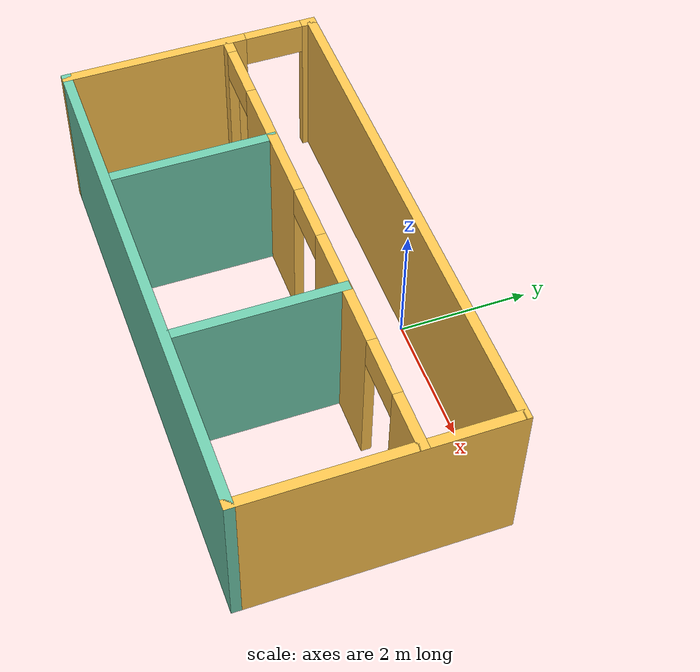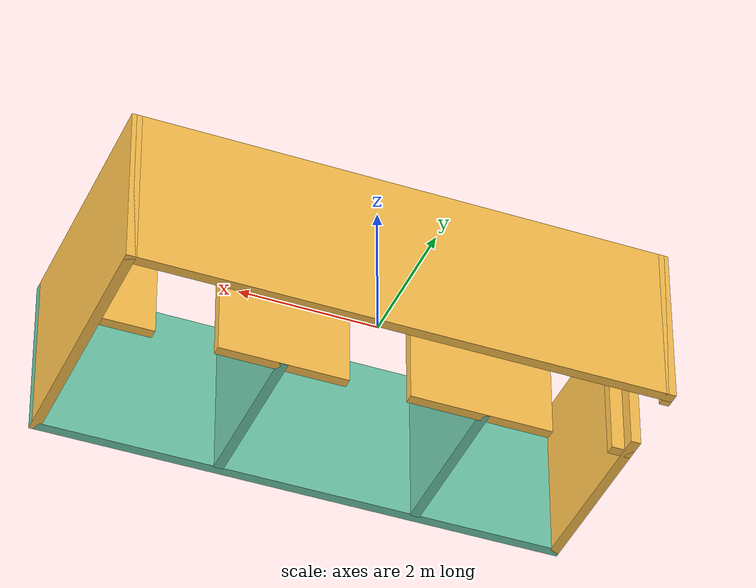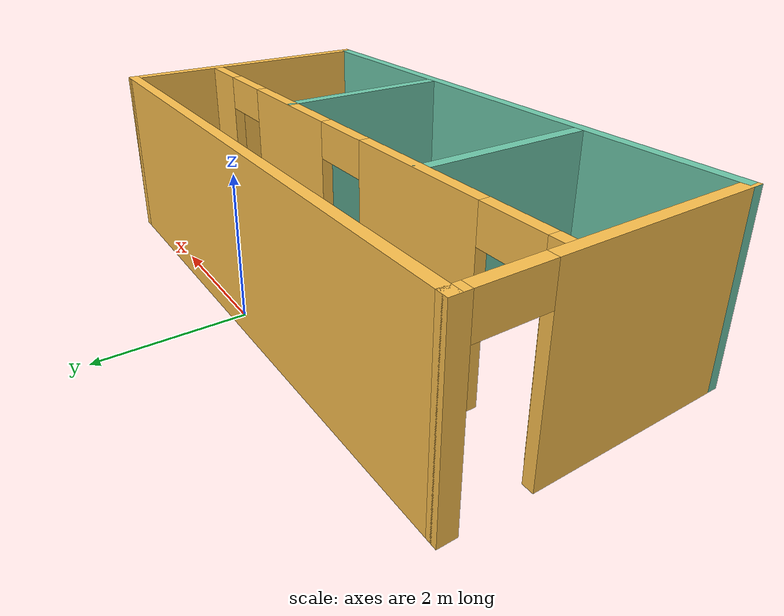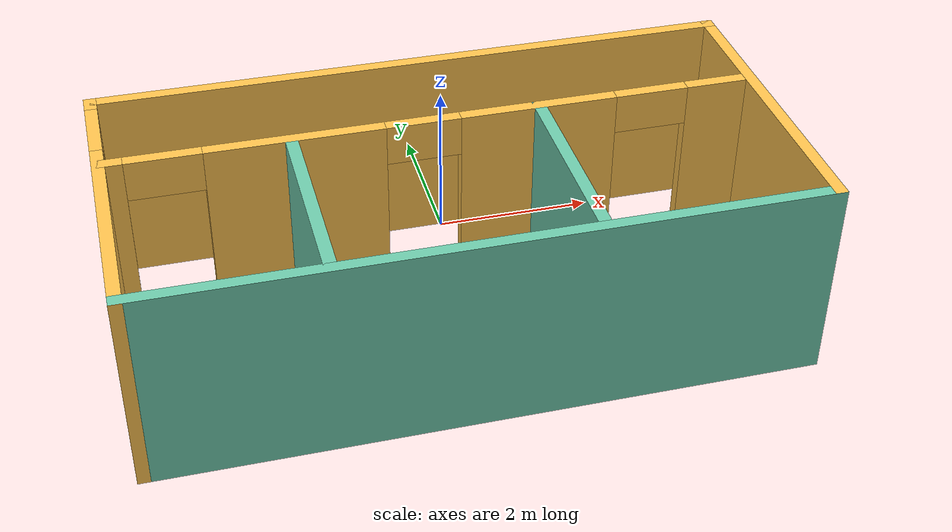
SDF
<?xml version='1.0'?>
<sdf version='1.6'>
  <model name='building'>
    <pose frame=''>-0.355 -1.835 0 0 -0 0</pose>
    <link name='Wall_12'>
      <collision name='Wall_12_Collision'>
        <geometry>
          <box>
            <size>8 0.15 2.5</size>
          </box>
        </geometry>
        <pose frame=''>0 0 1.25 0 -0 0</pose>
      </collision>
      <visual name='Wall_12_Visual'>
        <pose frame=''>0 0 1.25 0 -0 0</pose>
        <geometry>
          <box>
            <size>8 0.15 2.5</size>
          </box>
        </geometry>
        <material>
          <script>
            <uri>file://media/materials/scripts/gazebo.material</uri>
            <name>Gazebo/Grey</name>
          </script>
          <ambient>1 0.764706 0.305882 1</ambient>
        </material>
        <meta>
          <layer>0</layer>
        </meta>
      </visual>
      <pose frame=''>0 1.925 0 0 -0 0</pose>
    </link>
    <link name='Wall_13'>
      <collision name='Wall_13_Collision'>
        <geometry>
          <box>
            <size>4 0.15 2.5</size>
          </box>
        </geometry>
        <pose frame=''>0 0 1.25 0 -0 0</pose>
      </collision>
      <visual name='Wall_13_Visual'>
        <pose frame=''>0 0 1.25 0 -0 0</pose>
        <geometry>
          <box>
            <size>4 0.15 2.5</size>
          </box>
        </geometry>
        <material>
          <script>
            <uri>file://media/materials/scripts/gazebo.material</uri>
            <name>Gazebo/Grey</name>
          </script>
          <ambient>1 0.764706 0.305882 1</ambient>
        </material>
        <meta>
          <layer>0</layer>
        </meta>
      </visual>
      <pose frame=''>3.925 0 0 0 0 -1.5708</pose>
    </link>
    <link name='Wall_14'>
      <collision name='Wall_14_Collision'>
        <geometry>
          <box>
            <size>8 0.15 2.5</size>
          </box>
        </geometry>
        <pose frame=''>0 0 1.25 0 -0 0</pose>
      </collision>
      <visual name='Wall_14_Visual'>
        <pose frame=''>0 0 1.25 0 -0 0</pose>
        <geometry>
          <box>
            <size>8 0.15 2.5</size>
          </box>
        </geometry>
        <material>
          <script>
            <uri>file://media/materials/scripts/gazebo.material</uri>
            <name>Gazebo/Grey</name>
          </script>
          <ambient>0.435294 0.796078 0.67451 1</ambient>
        </material>
        <meta>
          <layer>0</layer>
        </meta>
      </visual>
      <pose frame=''>0 -1.925 0 0 -0 3.14159</pose>
    </link>
    <link name='Wall_15'>
      <pose frame=''>-3.925 0 0 0 -0 1.5708</pose>
      <visual name='Wall_15_Visual_0'>
        <pose frame=''>-0.5725 0 1.25 0 -0 0</pose>
        <geometry>
          <box>
            <size>2.855 0.15 2.5</size>
          </box>
        </geometry>
        <material>
          <script>
            <uri>file://media/materials/scripts/gazebo.material</uri>
            <name>Gazebo/Grey</name>
          </script>
          <ambient>1 0.764706 0.305882 1</ambient>
        </material>
        <meta>
          <layer>0</layer>
        </meta>
      </visual>
      <collision name='Wall_15_Collision_0'>
        <geometry>
          <box>
            <size>2.855 0.15 2.5</size>
          </box>
        </geometry>
        <pose frame=''>-0.5725 0 1.25 0 -0 0</pose>
      </collision>
      <visual name='Wall_15_Visual_1'>
        <pose frame=''>1.8775 0 1.25 0 -0 0</pose>
        <geometry>
          <box>
            <size>0.245 0.15 2.5</size>
          </box>
        </geometry>
        <material>
          <script>
            <uri>file://media/materials/scripts/gazebo.material</uri>
            <name>Gazebo/Grey</name>
          </script>
          <ambient>1 0.764706 0.305882 1</ambient>
        </material>
        <meta>
          <layer>0</layer>
        </meta>
      </visual>
      <collision name='Wall_15_Collision_1'>
        <geometry>
          <box>
            <size>0.245 0.15 2.5</size>
          </box>
        </geometry>
        <pose frame=''>1.8775 0 1.25 0 -0 0</pose>
      </collision>
      <visual name='Wall_15_Visual_2'>
        <pose frame=''>1.305 0 2.25 0 -0 0</pose>
        <geometry>
          <box>
            <size>0.9 0.15 0.5</size>
          </box>
        </geometry>
        <material>
          <script>
            <uri>file://media/materials/scripts/gazebo.material</uri>
            <name>Gazebo/Grey</name>
          </script>
          <ambient>1 0.764706 0.305882 1</ambient>
        </material>
        <meta>
          <layer>0</layer>
        </meta>
      </visual>
      <collision name='Wall_15_Collision_2'>
        <geometry>
          <box>
            <size>0.9 0.15 0.5</size>
          </box>
        </geometry>
        <pose frame=''>1.305 0 2.25 0 -0 0</pose>
      </collision>
    </link>
    <link name='Wall_19'>
      <pose frame=''>0 0.565 0 0 -0 0</pose>
      <visual name='Wall_19_Visual_0'>
        <pose frame=''>-3.8275 0 1.25 0 -0 0</pose>
        <geometry>
          <box>
            <size>0.345 0.15 2.5</size>
          </box>
        </geometry>
        <material>
          <script>
            <uri>file://media/materials/scripts/gazebo.material</uri>
            <name>Gazebo/Grey</name>
          </script>
          <ambient>1 0.764706 0.305882 1</ambient>
        </material>
        <meta>
          <layer>0</layer>
        </meta>
      </visual>
      <collision name='Wall_19_Collision_0'>
        <geometry>
          <box>
            <size>0.345 0.15 2.5</size>
          </box>
        </geometry>
        <pose frame=''>-3.8275 0 1.25 0 -0 0</pose>
      </collision>
      <visual name='Wall_19_Visual_1'>
        <pose frame=''>-1.69 0 1.25 0 -0 0</pose>
        <geometry>
          <box>
            <size>2.13 0.15 2.5</size>
          </box>
        </geometry>
        <material>
          <script>
            <uri>file://media/materials/scripts/gazebo.material</uri>
            <name>Gazebo/Grey</name>
          </script>
          <ambient>1 0.764706 0.305882 1</ambient>
        </material>
        <meta>
          <layer>0</layer>
        </meta>
      </visual>
      <collision name='Wall_19_Collision_1'>
        <geometry>
          <box>
            <size>2.13 0.15 2.5</size>
          </box>
        </geometry>
        <pose frame=''>-1.69 0 1.25 0 -0 0</pose>
      </collision>
      <visual name='Wall_19_Visual_2'>
        <pose frame=''>1.235 0 1.25 0 -0 0</pose>
        <geometry>
          <box>
            <size>1.92 0.15 2.5</size>
          </box>
        </geometry>
        <material>
          <script>
            <uri>file://media/materials/scripts/gazebo.material</uri>
            <name>Gazebo/Grey</name>
          </script>
          <ambient>1 0.764706 0.305882 1</ambient>
        </material>
        <meta>
          <layer>0</layer>
        </meta>
      </visual>
      <collision name='Wall_19_Collision_2'>
        <geometry>
          <box>
            <size>1.92 0.15 2.5</size>
          </box>
        </geometry>
        <pose frame=''>1.235 0 1.25 0 -0 0</pose>
      </collision>
      <visual name='Wall_19_Visual_3'>
        <pose frame=''>3.5475 0 1.25 0 -0 0</pose>
        <geometry>
          <box>
            <size>0.905 0.15 2.5</size>
          </box>
        </geometry>
        <material>
          <script>
            <uri>file://media/materials/scripts/gazebo.material</uri>
            <name>Gazebo/Grey</name>
          </script>
          <ambient>1 0.764706 0.305882 1</ambient>
        </material>
        <meta>
          <layer>0</layer>
        </meta>
      </visual>
      <collision name='Wall_19_Collision_3'>
        <geometry>
          <box>
            <size>0.905 0.15 2.5</size>
          </box>
        </geometry>
        <pose frame=''>3.5475 0 1.25 0 -0 0</pose>
      </collision>
      <visual name='Wall_19_Visual_4'>
        <pose frame=''>-3.205 0 2.25 0 -0 0</pose>
        <geometry>
          <box>
            <size>0.9 0.15 0.5</size>
          </box>
        </geometry>
        <material>
          <script>
            <uri>file://media/materials/scripts/gazebo.material</uri>
            <name>Gazebo/Grey</name>
          </script>
          <ambient>1 0.764706 0.305882 1</ambient>
        </material>
        <meta>
          <layer>0</layer>
        </meta>
      </visual>
      <collision name='Wall_19_Collision_4'>
        <geometry>
          <box>
            <size>0.9 0.15 0.5</size>
          </box>
        </geometry>
        <pose frame=''>-3.205 0 2.25 0 -0 0</pose>
      </collision>
      <visual name='Wall_19_Visual_5'>
        <pose frame=''>-0.175 0 2.25 0 -0 0</pose>
        <geometry>
          <box>
            <size>0.9 0.15 0.5</size>
          </box>
        </geometry>
        <material>
          <script>
            <uri>file://media/materials/scripts/gazebo.material</uri>
            <name>Gazebo/Grey</name>
          </script>
          <ambient>1 0.764706 0.305882 1</ambient>
        </material>
        <meta>
          <layer>0</layer>
        </meta>
      </visual>
      <collision name='Wall_19_Collision_5'>
        <geometry>
          <box>
            <size>0.9 0.15 0.5</size>
          </box>
        </geometry>
        <pose frame=''>-0.175 0 2.25 0 -0 0</pose>
      </collision>
      <visual name='Wall_19_Visual_6'>
        <pose frame=''>2.645 0 2.25 0 -0 0</pose>
        <geometry>
          <box>
            <size>0.9 0.15 0.5</size>
          </box>
        </geometry>
        <material>
          <script>
            <uri>file://media/materials/scripts/gazebo.material</uri>
            <name>Gazebo/Grey</name>
          </script>
          <ambient>1 0.764706 0.305882 1</ambient>
        </material>
        <meta>
          <layer>0</layer>
        </meta>
      </visual>
      <collision name='Wall_19_Collision_6'>
        <geometry>
          <box>
            <size>0.9 0.15 0.5</size>
          </box>
        </geometry>
        <pose frame=''>2.645 0 2.25 0 -0 0</pose>
      </collision>
    </link>
    <link name='Wall_21'>
      <collision name='Wall_21_Collision'>
        <geometry>
          <box>
            <size>2.5 0.15 2.5</size>
          </box>
        </geometry>
        <pose frame=''>0 0 1.25 0 -0 0</pose>
      </collision>
      <visual name='Wall_21_Visual'>
        <pose frame=''>0 0 1.25 0 -0 0</pose>
        <geometry>
          <box>
            <size>2.5 0.15 2.5</size>
          </box>
        </geometry>
        <material>
          <script>
            <uri>file://media/materials/scripts/gazebo.material</uri>
            <name>Gazebo/Grey</name>
          </script>
          <ambient>0.435294 0.796078 0.67451 1</ambient>
        </material>
        <meta>
          <layer>0</layer>
        </meta>
      </visual>
      <pose frame=''>-1.735 -0.63 0 0 0 -1.5708</pose>
    </link>
    <link name='Wall_23'>
      <collision name='Wall_23_Collision'>
        <geometry>
          <box>
            <size>2.5 0.15 2.5</size>
          </box>
        </geometry>
        <pose frame=''>0 0 1.25 0 -0 0</pose>
      </collision>
      <visual name='Wall_23_Visual'>
        <pose frame=''>0 0 1.25 0 -0 0</pose>
        <geometry>
          <box>
            <size>2.5 0.15 2.5</size>
          </box>
        </geometry>
        <material>
          <script>
            <uri>file://media/materials/scripts/gazebo.material</uri>
            <name>Gazebo/Grey</name>
          </script>
          <ambient>0.435294 0.796078 0.67451 1</ambient>
        </material>
        <meta>
          <layer>0</layer>
        </meta>
      </visual>
      <pose frame=''>1.245 -0.62 0 0 0 -1.5708</pose>
    </link>
    <static>1</static>
  </model>
</sdf>
